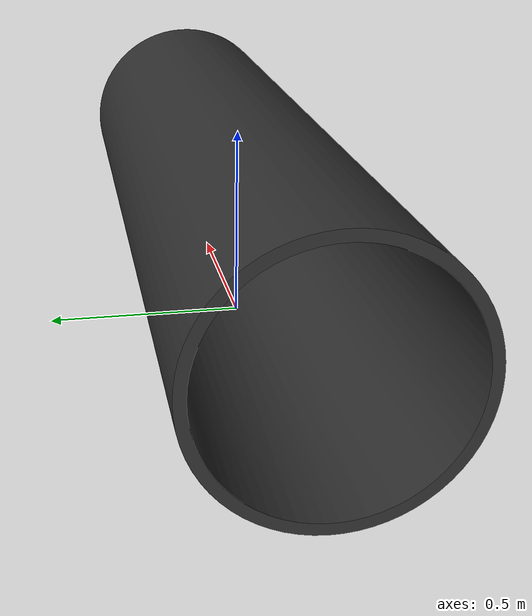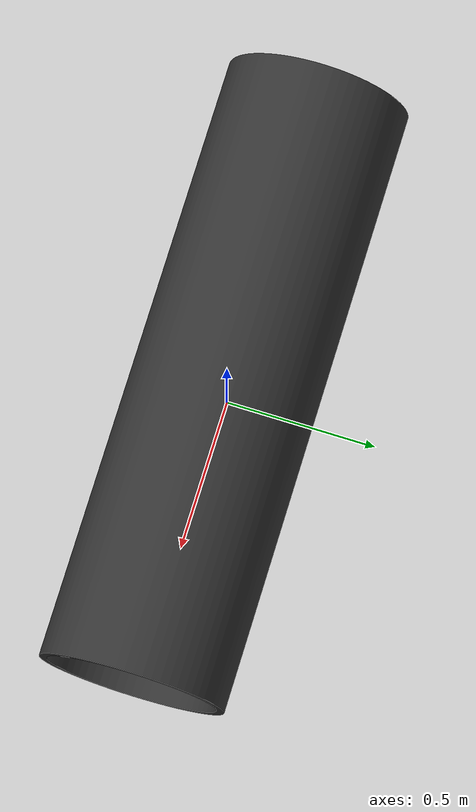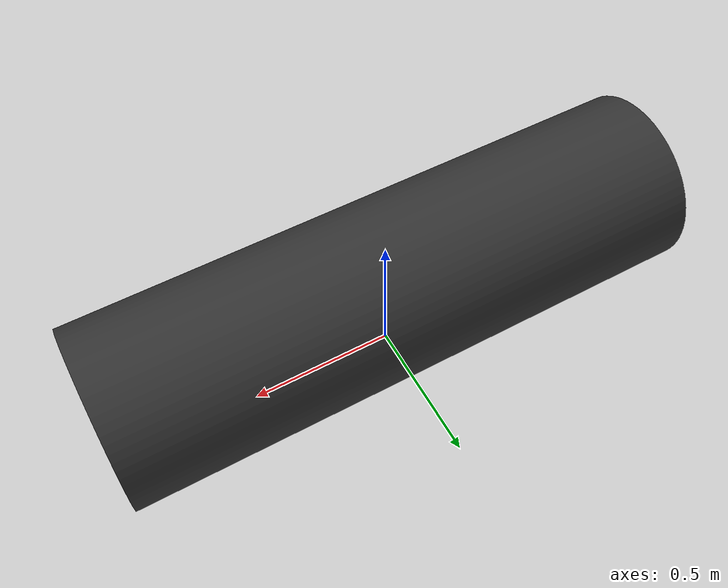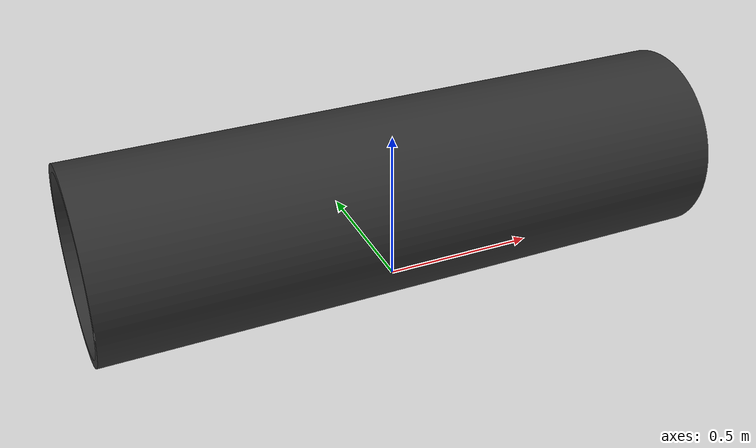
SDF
<?xml version="1.0"?>
<sdf version="1.9">
  <model name="pipe">
    <static>1</static>
    <link name="pipe_link">
      <pose>0 0 0 0 0 0</pose>
      <inertial>
        <mass>50</mass>
        <inertia>
          <ixx>10</ixx>
          <ixy>0</ixy>
          <ixz>0</ixz>
          <iyy>10</iyy>
          <iyz>0</iyz>
          <izz>10</izz>
        </inertia>
      </inertial>
      <visual name="pipe_visual">
        <geometry>
          <mesh>
            <uri>meshes/pipe.stl</uri>
            <scale>0.001 0.001 0.001</scale>
          </mesh>
        </geometry>
        <material>
          <ambient>0.2 0.2 0.2 1</ambient>
          <diffuse>0.2 0.2 0.2 1</diffuse>
        </material>
      </visual>
      <collision name="pipe_collision">
        <geometry>
          <mesh>
            <uri>meshes/pipe_col.stl</uri>
            <scale>0.001 0.001 0.001</scale>
          </mesh>
        </geometry>
      </collision>
    </link>
  </model>
</sdf>
